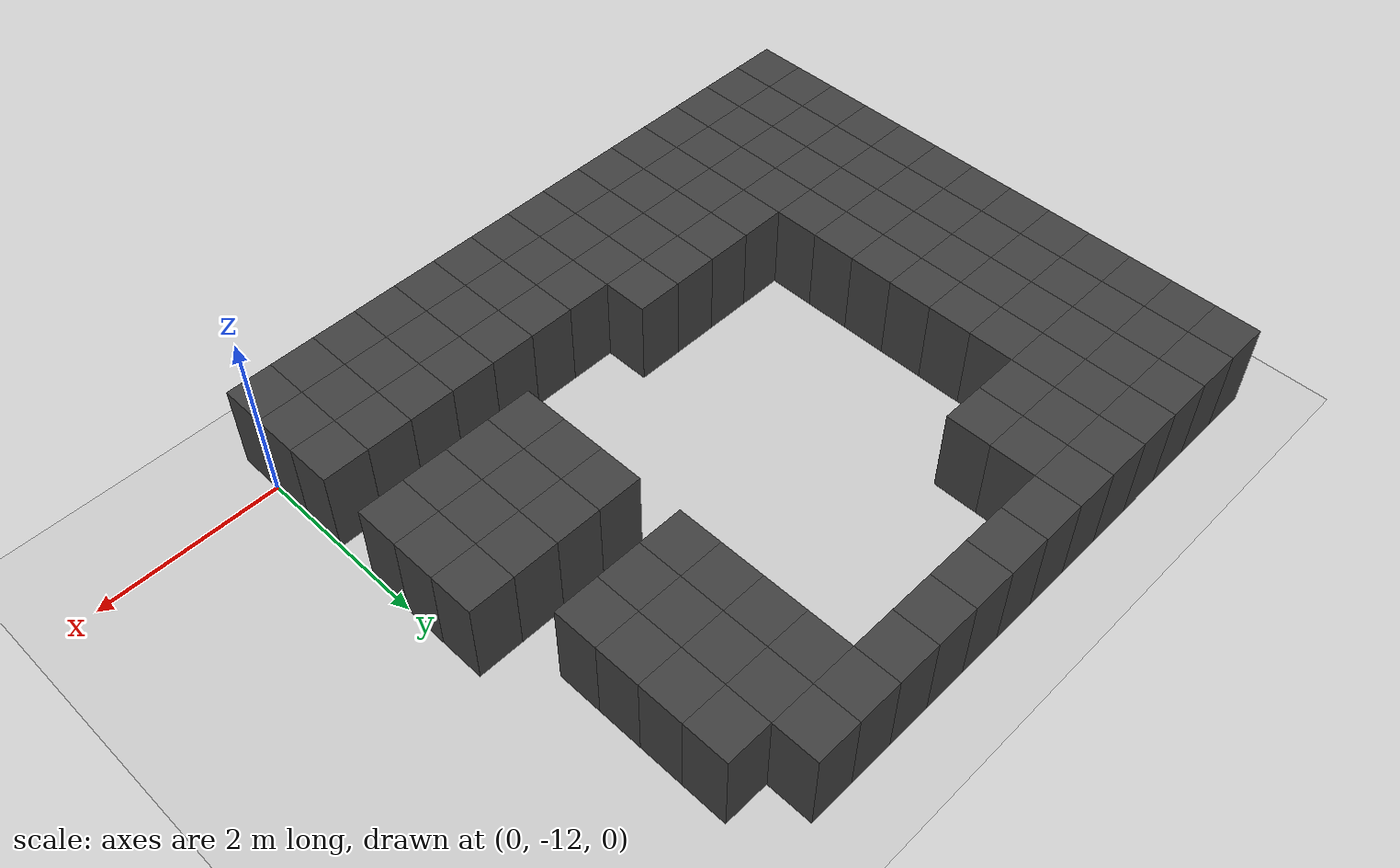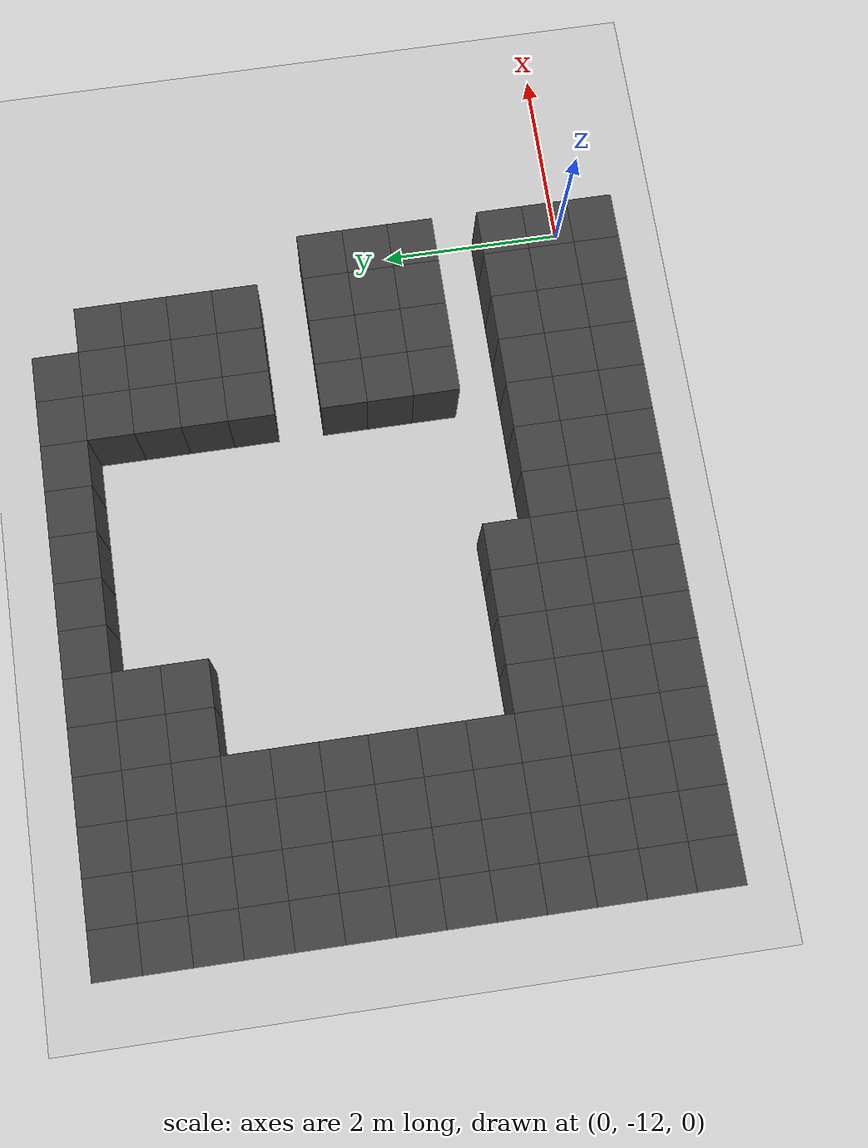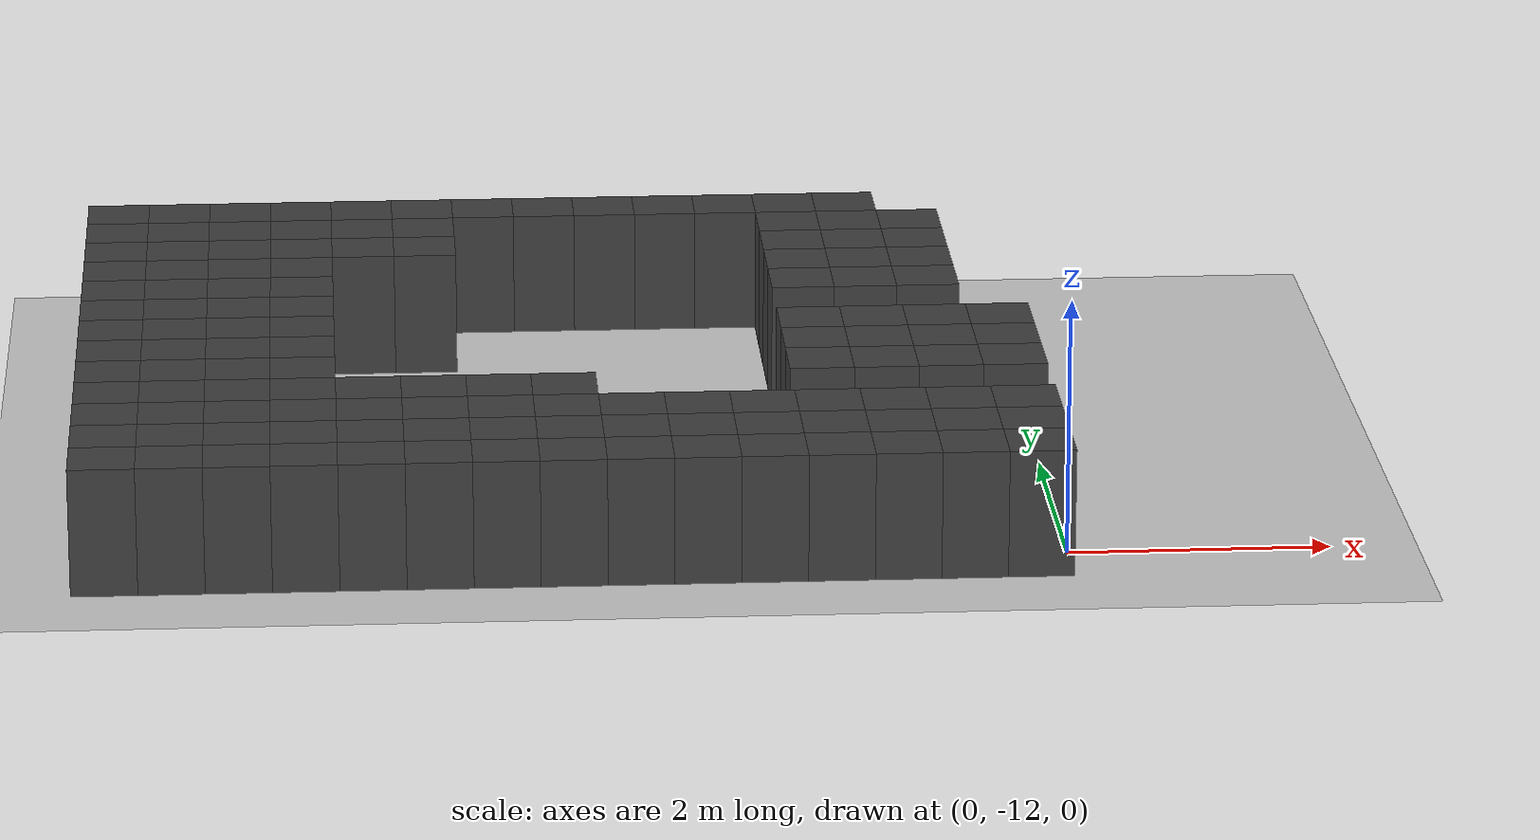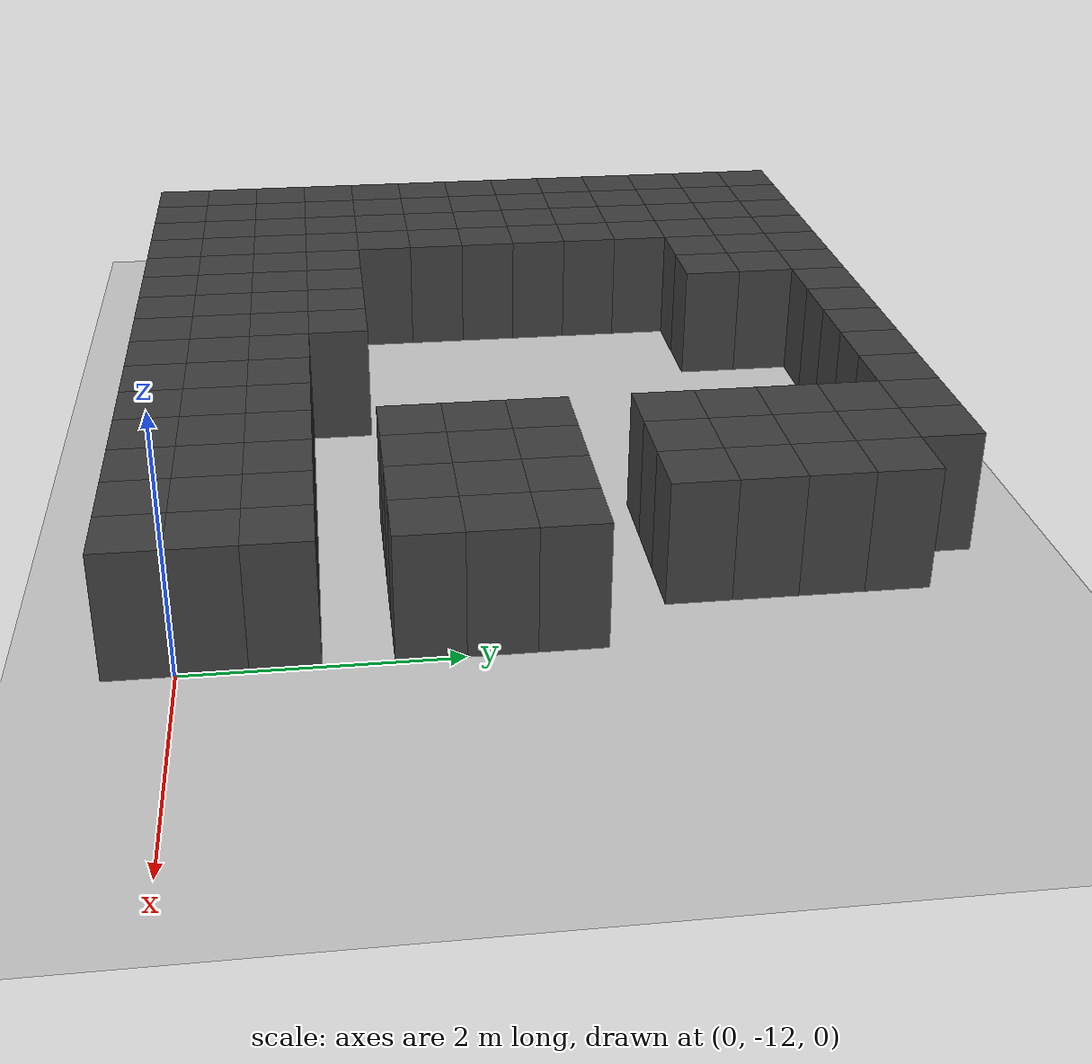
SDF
<sdf version="1.7">
 <world name="map_11779">
  <model name="ground_plane">
   <static>true</static>
   <link name="link">
    <collision name="collision">
     <geometry><plane><normal>0 0 1</normal><size>200 200</size></plane></geometry>
    </collision>
    <visual name="visual">
     <geometry><plane><normal>0 0 1</normal><size>200 200</size></plane></geometry>
     <material><ambient>0.8 0.8 0.8 1</ambient><diffuse>0.8 0.8 0.8 1</diffuse></material>
    </visual>
   </link>
  </model>
  <model name="maze_environment">
   <static>true</static>
   <link name="wall_1545">
    <pose>-7.250 -6.250 0.500 0 0 0</pose>
    <collision name="col"><geometry><box><size>0.5 0.5 1.0</size></box></geometry></collision>
    <visual name="vis">
     <geometry><box><size>0.5 0.5 1.0</size></box></geometry>
     <material><ambient>0.15 0.15 0.15 1</ambient><diffuse>0.25 0.25 0.25 1</diffuse></material>
    </visual>
   </link>
   <link name="wall_1546">
    <pose>-6.750 -6.250 0.500 0 0 0</pose>
    <collision name="col"><geometry><box><size>0.5 0.5 1.0</size></box></geometry></collision>
    <visual name="vis">
     <geometry><box><size>0.5 0.5 1.0</size></box></geometry>
     <material><ambient>0.15 0.15 0.15 1</ambient><diffuse>0.25 0.25 0.25 1</diffuse></material>
    </visual>
   </link>
   <link name="wall_1547">
    <pose>-6.250 -6.250 0.500 0 0 0</pose>
    <collision name="col"><geometry><box><size>0.5 0.5 1.0</size></box></geometry></collision>
    <visual name="vis">
     <geometry><box><size>0.5 0.5 1.0</size></box></geometry>
     <material><ambient>0.15 0.15 0.15 1</ambient><diffuse>0.25 0.25 0.25 1</diffuse></material>
    </visual>
   </link>
   <link name="wall_1548">
    <pose>-5.750 -6.250 0.500 0 0 0</pose>
    <collision name="col"><geometry><box><size>0.5 0.5 1.0</size></box></geometry></collision>
    <visual name="vis">
     <geometry><box><size>0.5 0.5 1.0</size></box></geometry>
     <material><ambient>0.15 0.15 0.15 1</ambient><diffuse>0.25 0.25 0.25 1</diffuse></material>
    </visual>
   </link>
   <link name="wall_1549">
    <pose>-5.250 -6.250 0.500 0 0 0</pose>
    <collision name="col"><geometry><box><size>0.5 0.5 1.0</size></box></geometry></collision>
    <visual name="vis">
     <geometry><box><size>0.5 0.5 1.0</size></box></geometry>
     <material><ambient>0.15 0.15 0.15 1</ambient><diffuse>0.25 0.25 0.25 1</diffuse></material>
    </visual>
   </link>
   <link name="wall_1550">
    <pose>-4.750 -6.250 0.500 0 0 0</pose>
    <collision name="col"><geometry><box><size>0.5 0.5 1.0</size></box></geometry></collision>
    <visual name="vis">
     <geometry><box><size>0.5 0.5 1.0</size></box></geometry>
     <material><ambient>0.15 0.15 0.15 1</ambient><diffuse>0.25 0.25 0.25 1</diffuse></material>
    </visual>
   </link>
   <link name="wall_1551">
    <pose>-4.250 -6.250 0.500 0 0 0</pose>
    <collision name="col"><geometry><box><size>0.5 0.5 1.0</size></box></geometry></collision>
    <visual name="vis">
     <geometry><box><size>0.5 0.5 1.0</size></box></geometry>
     <material><ambient>0.15 0.15 0.15 1</ambient><diffuse>0.25 0.25 0.25 1</diffuse></material>
    </visual>
   </link>
   <link name="wall_1552">
    <pose>-3.750 -6.250 0.500 0 0 0</pose>
    <collision name="col"><geometry><box><size>0.5 0.5 1.0</size></box></geometry></collision>
    <visual name="vis">
     <geometry><box><size>0.5 0.5 1.0</size></box></geometry>
     <material><ambient>0.15 0.15 0.15 1</ambient><diffuse>0.25 0.25 0.25 1</diffuse></material>
    </visual>
   </link>
   <link name="wall_1553">
    <pose>-3.250 -6.250 0.500 0 0 0</pose>
    <collision name="col"><geometry><box><size>0.5 0.5 1.0</size></box></geometry></collision>
    <visual name="vis">
     <geometry><box><size>0.5 0.5 1.0</size></box></geometry>
     <material><ambient>0.15 0.15 0.15 1</ambient><diffuse>0.25 0.25 0.25 1</diffuse></material>
    </visual>
   </link>
   <link name="wall_1554">
    <pose>-2.750 -6.250 0.500 0 0 0</pose>
    <collision name="col"><geometry><box><size>0.5 0.5 1.0</size></box></geometry></collision>
    <visual name="vis">
     <geometry><box><size>0.5 0.5 1.0</size></box></geometry>
     <material><ambient>0.15 0.15 0.15 1</ambient><diffuse>0.25 0.25 0.25 1</diffuse></material>
    </visual>
   </link>
   <link name="wall_1555">
    <pose>-2.250 -6.250 0.500 0 0 0</pose>
    <collision name="col"><geometry><box><size>0.5 0.5 1.0</size></box></geometry></collision>
    <visual name="vis">
     <geometry><box><size>0.5 0.5 1.0</size></box></geometry>
     <material><ambient>0.15 0.15 0.15 1</ambient><diffuse>0.25 0.25 0.25 1</diffuse></material>
    </visual>
   </link>
   <link name="wall_1556">
    <pose>-1.750 -6.250 0.500 0 0 0</pose>
    <collision name="col"><geometry><box><size>0.5 0.5 1.0</size></box></geometry></collision>
    <visual name="vis">
     <geometry><box><size>0.5 0.5 1.0</size></box></geometry>
     <material><ambient>0.15 0.15 0.15 1</ambient><diffuse>0.25 0.25 0.25 1</diffuse></material>
    </visual>
   </link>
   <link name="wall_1557">
    <pose>-1.250 -6.250 0.500 0 0 0</pose>
    <collision name="col"><geometry><box><size>0.5 0.5 1.0</size></box></geometry></collision>
    <visual name="vis">
     <geometry><box><size>0.5 0.5 1.0</size></box></geometry>
     <material><ambient>0.15 0.15 0.15 1</ambient><diffuse>0.25 0.25 0.25 1</diffuse></material>
    </visual>
   </link>
   <link name="wall_1594">
    <pose>-7.250 -6.750 0.500 0 0 0</pose>
    <collision name="col"><geometry><box><size>0.5 0.5 1.0</size></box></geometry></collision>
    <visual name="vis">
     <geometry><box><size>0.5 0.5 1.0</size></box></geometry>
     <material><ambient>0.15 0.15 0.15 1</ambient><diffuse>0.25 0.25 0.25 1</diffuse></material>
    </visual>
   </link>
   <link name="wall_1595">
    <pose>-6.750 -6.750 0.500 0 0 0</pose>
    <collision name="col"><geometry><box><size>0.5 0.5 1.0</size></box></geometry></collision>
    <visual name="vis">
     <geometry><box><size>0.5 0.5 1.0</size></box></geometry>
     <material><ambient>0.15 0.15 0.15 1</ambient><diffuse>0.25 0.25 0.25 1</diffuse></material>
    </visual>
   </link>
   <link name="wall_1596">
    <pose>-6.250 -6.750 0.500 0 0 0</pose>
    <collision name="col"><geometry><box><size>0.5 0.5 1.0</size></box></geometry></collision>
    <visual name="vis">
     <geometry><box><size>0.5 0.5 1.0</size></box></geometry>
     <material><ambient>0.15 0.15 0.15 1</ambient><diffuse>0.25 0.25 0.25 1</diffuse></material>
    </visual>
   </link>
   <link name="wall_1597">
    <pose>-5.750 -6.750 0.500 0 0 0</pose>
    <collision name="col"><geometry><box><size>0.5 0.5 1.0</size></box></geometry></collision>
    <visual name="vis">
     <geometry><box><size>0.5 0.5 1.0</size></box></geometry>
     <material><ambient>0.15 0.15 0.15 1</ambient><diffuse>0.25 0.25 0.25 1</diffuse></material>
    </visual>
   </link>
   <link name="wall_1598">
    <pose>-5.250 -6.750 0.500 0 0 0</pose>
    <collision name="col"><geometry><box><size>0.5 0.5 1.0</size></box></geometry></collision>
    <visual name="vis">
     <geometry><box><size>0.5 0.5 1.0</size></box></geometry>
     <material><ambient>0.15 0.15 0.15 1</ambient><diffuse>0.25 0.25 0.25 1</diffuse></material>
    </visual>
   </link>
   <link name="wall_1599">
    <pose>-4.750 -6.750 0.500 0 0 0</pose>
    <collision name="col"><geometry><box><size>0.5 0.5 1.0</size></box></geometry></collision>
    <visual name="vis">
     <geometry><box><size>0.5 0.5 1.0</size></box></geometry>
     <material><ambient>0.15 0.15 0.15 1</ambient><diffuse>0.25 0.25 0.25 1</diffuse></material>
    </visual>
   </link>
   <link name="wall_1600">
    <pose>-1.750 -6.750 0.500 0 0 0</pose>
    <collision name="col"><geometry><box><size>0.5 0.5 1.0</size></box></geometry></collision>
    <visual name="vis">
     <geometry><box><size>0.5 0.5 1.0</size></box></geometry>
     <material><ambient>0.15 0.15 0.15 1</ambient><diffuse>0.25 0.25 0.25 1</diffuse></material>
    </visual>
   </link>
   <link name="wall_1601">
    <pose>-1.250 -6.750 0.500 0 0 0</pose>
    <collision name="col"><geometry><box><size>0.5 0.5 1.0</size></box></geometry></collision>
    <visual name="vis">
     <geometry><box><size>0.5 0.5 1.0</size></box></geometry>
     <material><ambient>0.15 0.15 0.15 1</ambient><diffuse>0.25 0.25 0.25 1</diffuse></material>
    </visual>
   </link>
   <link name="wall_1602">
    <pose>-0.750 -6.750 0.500 0 0 0</pose>
    <collision name="col"><geometry><box><size>0.5 0.5 1.0</size></box></geometry></collision>
    <visual name="vis">
     <geometry><box><size>0.5 0.5 1.0</size></box></geometry>
     <material><ambient>0.15 0.15 0.15 1</ambient><diffuse>0.25 0.25 0.25 1</diffuse></material>
    </visual>
   </link>
   <link name="wall_1638">
    <pose>-7.250 -7.250 0.500 0 0 0</pose>
    <collision name="col"><geometry><box><size>0.5 0.5 1.0</size></box></geometry></collision>
    <visual name="vis">
     <geometry><box><size>0.5 0.5 1.0</size></box></geometry>
     <material><ambient>0.15 0.15 0.15 1</ambient><diffuse>0.25 0.25 0.25 1</diffuse></material>
    </visual>
   </link>
   <link name="wall_1639">
    <pose>-6.750 -7.250 0.500 0 0 0</pose>
    <collision name="col"><geometry><box><size>0.5 0.5 1.0</size></box></geometry></collision>
    <visual name="vis">
     <geometry><box><size>0.5 0.5 1.0</size></box></geometry>
     <material><ambient>0.15 0.15 0.15 1</ambient><diffuse>0.25 0.25 0.25 1</diffuse></material>
    </visual>
   </link>
   <link name="wall_1640">
    <pose>-6.250 -7.250 0.500 0 0 0</pose>
    <collision name="col"><geometry><box><size>0.5 0.5 1.0</size></box></geometry></collision>
    <visual name="vis">
     <geometry><box><size>0.5 0.5 1.0</size></box></geometry>
     <material><ambient>0.15 0.15 0.15 1</ambient><diffuse>0.25 0.25 0.25 1</diffuse></material>
    </visual>
   </link>
   <link name="wall_1641">
    <pose>-5.750 -7.250 0.500 0 0 0</pose>
    <collision name="col"><geometry><box><size>0.5 0.5 1.0</size></box></geometry></collision>
    <visual name="vis">
     <geometry><box><size>0.5 0.5 1.0</size></box></geometry>
     <material><ambient>0.15 0.15 0.15 1</ambient><diffuse>0.25 0.25 0.25 1</diffuse></material>
    </visual>
   </link>
   <link name="wall_1642">
    <pose>-5.250 -7.250 0.500 0 0 0</pose>
    <collision name="col"><geometry><box><size>0.5 0.5 1.0</size></box></geometry></collision>
    <visual name="vis">
     <geometry><box><size>0.5 0.5 1.0</size></box></geometry>
     <material><ambient>0.15 0.15 0.15 1</ambient><diffuse>0.25 0.25 0.25 1</diffuse></material>
    </visual>
   </link>
   <link name="wall_1643">
    <pose>-4.750 -7.250 0.500 0 0 0</pose>
    <collision name="col"><geometry><box><size>0.5 0.5 1.0</size></box></geometry></collision>
    <visual name="vis">
     <geometry><box><size>0.5 0.5 1.0</size></box></geometry>
     <material><ambient>0.15 0.15 0.15 1</ambient><diffuse>0.25 0.25 0.25 1</diffuse></material>
    </visual>
   </link>
   <link name="wall_1644">
    <pose>-1.750 -7.250 0.500 0 0 0</pose>
    <collision name="col"><geometry><box><size>0.5 0.5 1.0</size></box></geometry></collision>
    <visual name="vis">
     <geometry><box><size>0.5 0.5 1.0</size></box></geometry>
     <material><ambient>0.15 0.15 0.15 1</ambient><diffuse>0.25 0.25 0.25 1</diffuse></material>
    </visual>
   </link>
   <link name="wall_1645">
    <pose>-1.250 -7.250 0.500 0 0 0</pose>
    <collision name="col"><geometry><box><size>0.5 0.5 1.0</size></box></geometry></collision>
    <visual name="vis">
     <geometry><box><size>0.5 0.5 1.0</size></box></geometry>
     <material><ambient>0.15 0.15 0.15 1</ambient><diffuse>0.25 0.25 0.25 1</diffuse></material>
    </visual>
   </link>
   <link name="wall_1646">
    <pose>-0.750 -7.250 0.500 0 0 0</pose>
    <collision name="col"><geometry><box><size>0.5 0.5 1.0</size></box></geometry></collision>
    <visual name="vis">
     <geometry><box><size>0.5 0.5 1.0</size></box></geometry>
     <material><ambient>0.15 0.15 0.15 1</ambient><diffuse>0.25 0.25 0.25 1</diffuse></material>
    </visual>
   </link>
   <link name="wall_1682">
    <pose>-7.250 -7.750 0.500 0 0 0</pose>
    <collision name="col"><geometry><box><size>0.5 0.5 1.0</size></box></geometry></collision>
    <visual name="vis">
     <geometry><box><size>0.5 0.5 1.0</size></box></geometry>
     <material><ambient>0.15 0.15 0.15 1</ambient><diffuse>0.25 0.25 0.25 1</diffuse></material>
    </visual>
   </link>
   <link name="wall_1683">
    <pose>-6.750 -7.750 0.500 0 0 0</pose>
    <collision name="col"><geometry><box><size>0.5 0.5 1.0</size></box></geometry></collision>
    <visual name="vis">
     <geometry><box><size>0.5 0.5 1.0</size></box></geometry>
     <material><ambient>0.15 0.15 0.15 1</ambient><diffuse>0.25 0.25 0.25 1</diffuse></material>
    </visual>
   </link>
   <link name="wall_1684">
    <pose>-6.250 -7.750 0.500 0 0 0</pose>
    <collision name="col"><geometry><box><size>0.5 0.5 1.0</size></box></geometry></collision>
    <visual name="vis">
     <geometry><box><size>0.5 0.5 1.0</size></box></geometry>
     <material><ambient>0.15 0.15 0.15 1</ambient><diffuse>0.25 0.25 0.25 1</diffuse></material>
    </visual>
   </link>
   <link name="wall_1685">
    <pose>-5.750 -7.750 0.500 0 0 0</pose>
    <collision name="col"><geometry><box><size>0.5 0.5 1.0</size></box></geometry></collision>
    <visual name="vis">
     <geometry><box><size>0.5 0.5 1.0</size></box></geometry>
     <material><ambient>0.15 0.15 0.15 1</ambient><diffuse>0.25 0.25 0.25 1</diffuse></material>
    </visual>
   </link>
   <link name="wall_1686">
    <pose>-1.750 -7.750 0.500 0 0 0</pose>
    <collision name="col"><geometry><box><size>0.5 0.5 1.0</size></box></geometry></collision>
    <visual name="vis">
     <geometry><box><size>0.5 0.5 1.0</size></box></geometry>
     <material><ambient>0.15 0.15 0.15 1</ambient><diffuse>0.25 0.25 0.25 1</diffuse></material>
    </visual>
   </link>
   <link name="wall_1687">
    <pose>-1.250 -7.750 0.500 0 0 0</pose>
    <collision name="col"><geometry><box><size>0.5 0.5 1.0</size></box></geometry></collision>
    <visual name="vis">
     <geometry><box><size>0.5 0.5 1.0</size></box></geometry>
     <material><ambient>0.15 0.15 0.15 1</ambient><diffuse>0.25 0.25 0.25 1</diffuse></material>
    </visual>
   </link>
   <link name="wall_1688">
    <pose>-0.750 -7.750 0.500 0 0 0</pose>
    <collision name="col"><geometry><box><size>0.5 0.5 1.0</size></box></geometry></collision>
    <visual name="vis">
     <geometry><box><size>0.5 0.5 1.0</size></box></geometry>
     <material><ambient>0.15 0.15 0.15 1</ambient><diffuse>0.25 0.25 0.25 1</diffuse></material>
    </visual>
   </link>
   <link name="wall_1724">
    <pose>-7.250 -8.250 0.500 0 0 0</pose>
    <collision name="col"><geometry><box><size>0.5 0.5 1.0</size></box></geometry></collision>
    <visual name="vis">
     <geometry><box><size>0.5 0.5 1.0</size></box></geometry>
     <material><ambient>0.15 0.15 0.15 1</ambient><diffuse>0.25 0.25 0.25 1</diffuse></material>
    </visual>
   </link>
   <link name="wall_1725">
    <pose>-6.750 -8.250 0.500 0 0 0</pose>
    <collision name="col"><geometry><box><size>0.5 0.5 1.0</size></box></geometry></collision>
    <visual name="vis">
     <geometry><box><size>0.5 0.5 1.0</size></box></geometry>
     <material><ambient>0.15 0.15 0.15 1</ambient><diffuse>0.25 0.25 0.25 1</diffuse></material>
    </visual>
   </link>
   <link name="wall_1726">
    <pose>-6.250 -8.250 0.500 0 0 0</pose>
    <collision name="col"><geometry><box><size>0.5 0.5 1.0</size></box></geometry></collision>
    <visual name="vis">
     <geometry><box><size>0.5 0.5 1.0</size></box></geometry>
     <material><ambient>0.15 0.15 0.15 1</ambient><diffuse>0.25 0.25 0.25 1</diffuse></material>
    </visual>
   </link>
   <link name="wall_1727">
    <pose>-5.750 -8.250 0.500 0 0 0</pose>
    <collision name="col"><geometry><box><size>0.5 0.5 1.0</size></box></geometry></collision>
    <visual name="vis">
     <geometry><box><size>0.5 0.5 1.0</size></box></geometry>
     <material><ambient>0.15 0.15 0.15 1</ambient><diffuse>0.25 0.25 0.25 1</diffuse></material>
    </visual>
   </link>
   <link name="wall_1728">
    <pose>-1.750 -8.250 0.500 0 0 0</pose>
    <collision name="col"><geometry><box><size>0.5 0.5 1.0</size></box></geometry></collision>
    <visual name="vis">
     <geometry><box><size>0.5 0.5 1.0</size></box></geometry>
     <material><ambient>0.15 0.15 0.15 1</ambient><diffuse>0.25 0.25 0.25 1</diffuse></material>
    </visual>
   </link>
   <link name="wall_1729">
    <pose>-1.250 -8.250 0.500 0 0 0</pose>
    <collision name="col"><geometry><box><size>0.5 0.5 1.0</size></box></geometry></collision>
    <visual name="vis">
     <geometry><box><size>0.5 0.5 1.0</size></box></geometry>
     <material><ambient>0.15 0.15 0.15 1</ambient><diffuse>0.25 0.25 0.25 1</diffuse></material>
    </visual>
   </link>
   <link name="wall_1730">
    <pose>-0.750 -8.250 0.500 0 0 0</pose>
    <collision name="col"><geometry><box><size>0.5 0.5 1.0</size></box></geometry></collision>
    <visual name="vis">
     <geometry><box><size>0.5 0.5 1.0</size></box></geometry>
     <material><ambient>0.15 0.15 0.15 1</ambient><diffuse>0.25 0.25 0.25 1</diffuse></material>
    </visual>
   </link>
   <link name="wall_1762">
    <pose>-7.250 -8.750 0.500 0 0 0</pose>
    <collision name="col"><geometry><box><size>0.5 0.5 1.0</size></box></geometry></collision>
    <visual name="vis">
     <geometry><box><size>0.5 0.5 1.0</size></box></geometry>
     <material><ambient>0.15 0.15 0.15 1</ambient><diffuse>0.25 0.25 0.25 1</diffuse></material>
    </visual>
   </link>
   <link name="wall_1763">
    <pose>-6.750 -8.750 0.500 0 0 0</pose>
    <collision name="col"><geometry><box><size>0.5 0.5 1.0</size></box></geometry></collision>
    <visual name="vis">
     <geometry><box><size>0.5 0.5 1.0</size></box></geometry>
     <material><ambient>0.15 0.15 0.15 1</ambient><diffuse>0.25 0.25 0.25 1</diffuse></material>
    </visual>
   </link>
   <link name="wall_1764">
    <pose>-6.250 -8.750 0.500 0 0 0</pose>
    <collision name="col"><geometry><box><size>0.5 0.5 1.0</size></box></geometry></collision>
    <visual name="vis">
     <geometry><box><size>0.5 0.5 1.0</size></box></geometry>
     <material><ambient>0.15 0.15 0.15 1</ambient><diffuse>0.25 0.25 0.25 1</diffuse></material>
    </visual>
   </link>
   <link name="wall_1765">
    <pose>-5.750 -8.750 0.500 0 0 0</pose>
    <collision name="col"><geometry><box><size>0.5 0.5 1.0</size></box></geometry></collision>
    <visual name="vis">
     <geometry><box><size>0.5 0.5 1.0</size></box></geometry>
     <material><ambient>0.15 0.15 0.15 1</ambient><diffuse>0.25 0.25 0.25 1</diffuse></material>
    </visual>
   </link>
   <link name="wall_1797">
    <pose>-7.250 -9.250 0.500 0 0 0</pose>
    <collision name="col"><geometry><box><size>0.5 0.5 1.0</size></box></geometry></collision>
    <visual name="vis">
     <geometry><box><size>0.5 0.5 1.0</size></box></geometry>
     <material><ambient>0.15 0.15 0.15 1</ambient><diffuse>0.25 0.25 0.25 1</diffuse></material>
    </visual>
   </link>
   <link name="wall_1798">
    <pose>-6.750 -9.250 0.500 0 0 0</pose>
    <collision name="col"><geometry><box><size>0.5 0.5 1.0</size></box></geometry></collision>
    <visual name="vis">
     <geometry><box><size>0.5 0.5 1.0</size></box></geometry>
     <material><ambient>0.15 0.15 0.15 1</ambient><diffuse>0.25 0.25 0.25 1</diffuse></material>
    </visual>
   </link>
   <link name="wall_1799">
    <pose>-6.250 -9.250 0.500 0 0 0</pose>
    <collision name="col"><geometry><box><size>0.5 0.5 1.0</size></box></geometry></collision>
    <visual name="vis">
     <geometry><box><size>0.5 0.5 1.0</size></box></geometry>
     <material><ambient>0.15 0.15 0.15 1</ambient><diffuse>0.25 0.25 0.25 1</diffuse></material>
    </visual>
   </link>
   <link name="wall_1800">
    <pose>-5.750 -9.250 0.500 0 0 0</pose>
    <collision name="col"><geometry><box><size>0.5 0.5 1.0</size></box></geometry></collision>
    <visual name="vis">
     <geometry><box><size>0.5 0.5 1.0</size></box></geometry>
     <material><ambient>0.15 0.15 0.15 1</ambient><diffuse>0.25 0.25 0.25 1</diffuse></material>
    </visual>
   </link>
   <link name="wall_1801">
    <pose>-1.750 -9.250 0.500 0 0 0</pose>
    <collision name="col"><geometry><box><size>0.5 0.5 1.0</size></box></geometry></collision>
    <visual name="vis">
     <geometry><box><size>0.5 0.5 1.0</size></box></geometry>
     <material><ambient>0.15 0.15 0.15 1</ambient><diffuse>0.25 0.25 0.25 1</diffuse></material>
    </visual>
   </link>
   <link name="wall_1802">
    <pose>-1.250 -9.250 0.500 0 0 0</pose>
    <collision name="col"><geometry><box><size>0.5 0.5 1.0</size></box></geometry></collision>
    <visual name="vis">
     <geometry><box><size>0.5 0.5 1.0</size></box></geometry>
     <material><ambient>0.15 0.15 0.15 1</ambient><diffuse>0.25 0.25 0.25 1</diffuse></material>
    </visual>
   </link>
   <link name="wall_1803">
    <pose>-0.750 -9.250 0.500 0 0 0</pose>
    <collision name="col"><geometry><box><size>0.5 0.5 1.0</size></box></geometry></collision>
    <visual name="vis">
     <geometry><box><size>0.5 0.5 1.0</size></box></geometry>
     <material><ambient>0.15 0.15 0.15 1</ambient><diffuse>0.25 0.25 0.25 1</diffuse></material>
    </visual>
   </link>
   <link name="wall_1804">
    <pose>-0.250 -9.250 0.500 0 0 0</pose>
    <collision name="col"><geometry><box><size>0.5 0.5 1.0</size></box></geometry></collision>
    <visual name="vis">
     <geometry><box><size>0.5 0.5 1.0</size></box></geometry>
     <material><ambient>0.15 0.15 0.15 1</ambient><diffuse>0.25 0.25 0.25 1</diffuse></material>
    </visual>
   </link>
   <link name="wall_1828">
    <pose>-7.250 -9.750 0.500 0 0 0</pose>
    <collision name="col"><geometry><box><size>0.5 0.5 1.0</size></box></geometry></collision>
    <visual name="vis">
     <geometry><box><size>0.5 0.5 1.0</size></box></geometry>
     <material><ambient>0.15 0.15 0.15 1</ambient><diffuse>0.25 0.25 0.25 1</diffuse></material>
    </visual>
   </link>
   <link name="wall_1829">
    <pose>-6.750 -9.750 0.500 0 0 0</pose>
    <collision name="col"><geometry><box><size>0.5 0.5 1.0</size></box></geometry></collision>
    <visual name="vis">
     <geometry><box><size>0.5 0.5 1.0</size></box></geometry>
     <material><ambient>0.15 0.15 0.15 1</ambient><diffuse>0.25 0.25 0.25 1</diffuse></material>
    </visual>
   </link>
   <link name="wall_1830">
    <pose>-6.250 -9.750 0.500 0 0 0</pose>
    <collision name="col"><geometry><box><size>0.5 0.5 1.0</size></box></geometry></collision>
    <visual name="vis">
     <geometry><box><size>0.5 0.5 1.0</size></box></geometry>
     <material><ambient>0.15 0.15 0.15 1</ambient><diffuse>0.25 0.25 0.25 1</diffuse></material>
    </visual>
   </link>
   <link name="wall_1831">
    <pose>-5.750 -9.750 0.500 0 0 0</pose>
    <collision name="col"><geometry><box><size>0.5 0.5 1.0</size></box></geometry></collision>
    <visual name="vis">
     <geometry><box><size>0.5 0.5 1.0</size></box></geometry>
     <material><ambient>0.15 0.15 0.15 1</ambient><diffuse>0.25 0.25 0.25 1</diffuse></material>
    </visual>
   </link>
   <link name="wall_1832">
    <pose>-1.750 -9.750 0.500 0 0 0</pose>
    <collision name="col"><geometry><box><size>0.5 0.5 1.0</size></box></geometry></collision>
    <visual name="vis">
     <geometry><box><size>0.5 0.5 1.0</size></box></geometry>
     <material><ambient>0.15 0.15 0.15 1</ambient><diffuse>0.25 0.25 0.25 1</diffuse></material>
    </visual>
   </link>
   <link name="wall_1833">
    <pose>-1.250 -9.750 0.500 0 0 0</pose>
    <collision name="col"><geometry><box><size>0.5 0.5 1.0</size></box></geometry></collision>
    <visual name="vis">
     <geometry><box><size>0.5 0.5 1.0</size></box></geometry>
     <material><ambient>0.15 0.15 0.15 1</ambient><diffuse>0.25 0.25 0.25 1</diffuse></material>
    </visual>
   </link>
   <link name="wall_1834">
    <pose>-0.750 -9.750 0.500 0 0 0</pose>
    <collision name="col"><geometry><box><size>0.5 0.5 1.0</size></box></geometry></collision>
    <visual name="vis">
     <geometry><box><size>0.5 0.5 1.0</size></box></geometry>
     <material><ambient>0.15 0.15 0.15 1</ambient><diffuse>0.25 0.25 0.25 1</diffuse></material>
    </visual>
   </link>
   <link name="wall_1835">
    <pose>-0.250 -9.750 0.500 0 0 0</pose>
    <collision name="col"><geometry><box><size>0.5 0.5 1.0</size></box></geometry></collision>
    <visual name="vis">
     <geometry><box><size>0.5 0.5 1.0</size></box></geometry>
     <material><ambient>0.15 0.15 0.15 1</ambient><diffuse>0.25 0.25 0.25 1</diffuse></material>
    </visual>
   </link>
   <link name="wall_1859">
    <pose>-7.250 -10.250 0.500 0 0 0</pose>
    <collision name="col"><geometry><box><size>0.5 0.5 1.0</size></box></geometry></collision>
    <visual name="vis">
     <geometry><box><size>0.5 0.5 1.0</size></box></geometry>
     <material><ambient>0.15 0.15 0.15 1</ambient><diffuse>0.25 0.25 0.25 1</diffuse></material>
    </visual>
   </link>
   <link name="wall_1860">
    <pose>-6.750 -10.250 0.500 0 0 0</pose>
    <collision name="col"><geometry><box><size>0.5 0.5 1.0</size></box></geometry></collision>
    <visual name="vis">
     <geometry><box><size>0.5 0.5 1.0</size></box></geometry>
     <material><ambient>0.15 0.15 0.15 1</ambient><diffuse>0.25 0.25 0.25 1</diffuse></material>
    </visual>
   </link>
   <link name="wall_1861">
    <pose>-6.250 -10.250 0.500 0 0 0</pose>
    <collision name="col"><geometry><box><size>0.5 0.5 1.0</size></box></geometry></collision>
    <visual name="vis">
     <geometry><box><size>0.5 0.5 1.0</size></box></geometry>
     <material><ambient>0.15 0.15 0.15 1</ambient><diffuse>0.25 0.25 0.25 1</diffuse></material>
    </visual>
   </link>
   <link name="wall_1862">
    <pose>-5.750 -10.250 0.500 0 0 0</pose>
    <collision name="col"><geometry><box><size>0.5 0.5 1.0</size></box></geometry></collision>
    <visual name="vis">
     <geometry><box><size>0.5 0.5 1.0</size></box></geometry>
     <material><ambient>0.15 0.15 0.15 1</ambient><diffuse>0.25 0.25 0.25 1</diffuse></material>
    </visual>
   </link>
   <link name="wall_1863">
    <pose>-1.750 -10.250 0.500 0 0 0</pose>
    <collision name="col"><geometry><box><size>0.5 0.5 1.0</size></box></geometry></collision>
    <visual name="vis">
     <geometry><box><size>0.5 0.5 1.0</size></box></geometry>
     <material><ambient>0.15 0.15 0.15 1</ambient><diffuse>0.25 0.25 0.25 1</diffuse></material>
    </visual>
   </link>
   <link name="wall_1864">
    <pose>-1.250 -10.250 0.500 0 0 0</pose>
    <collision name="col"><geometry><box><size>0.5 0.5 1.0</size></box></geometry></collision>
    <visual name="vis">
     <geometry><box><size>0.5 0.5 1.0</size></box></geometry>
     <material><ambient>0.15 0.15 0.15 1</ambient><diffuse>0.25 0.25 0.25 1</diffuse></material>
    </visual>
   </link>
   <link name="wall_1865">
    <pose>-0.750 -10.250 0.500 0 0 0</pose>
    <collision name="col"><geometry><box><size>0.5 0.5 1.0</size></box></geometry></collision>
    <visual name="vis">
     <geometry><box><size>0.5 0.5 1.0</size></box></geometry>
     <material><ambient>0.15 0.15 0.15 1</ambient><diffuse>0.25 0.25 0.25 1</diffuse></material>
    </visual>
   </link>
   <link name="wall_1866">
    <pose>-0.250 -10.250 0.500 0 0 0</pose>
    <collision name="col"><geometry><box><size>0.5 0.5 1.0</size></box></geometry></collision>
    <visual name="vis">
     <geometry><box><size>0.5 0.5 1.0</size></box></geometry>
     <material><ambient>0.15 0.15 0.15 1</ambient><diffuse>0.25 0.25 0.25 1</diffuse></material>
    </visual>
   </link>
   <link name="wall_1883">
    <pose>-7.250 -10.750 0.500 0 0 0</pose>
    <collision name="col"><geometry><box><size>0.5 0.5 1.0</size></box></geometry></collision>
    <visual name="vis">
     <geometry><box><size>0.5 0.5 1.0</size></box></geometry>
     <material><ambient>0.15 0.15 0.15 1</ambient><diffuse>0.25 0.25 0.25 1</diffuse></material>
    </visual>
   </link>
   <link name="wall_1884">
    <pose>-6.750 -10.750 0.500 0 0 0</pose>
    <collision name="col"><geometry><box><size>0.5 0.5 1.0</size></box></geometry></collision>
    <visual name="vis">
     <geometry><box><size>0.5 0.5 1.0</size></box></geometry>
     <material><ambient>0.15 0.15 0.15 1</ambient><diffuse>0.25 0.25 0.25 1</diffuse></material>
    </visual>
   </link>
   <link name="wall_1885">
    <pose>-6.250 -10.750 0.500 0 0 0</pose>
    <collision name="col"><geometry><box><size>0.5 0.5 1.0</size></box></geometry></collision>
    <visual name="vis">
     <geometry><box><size>0.5 0.5 1.0</size></box></geometry>
     <material><ambient>0.15 0.15 0.15 1</ambient><diffuse>0.25 0.25 0.25 1</diffuse></material>
    </visual>
   </link>
   <link name="wall_1886">
    <pose>-5.750 -10.750 0.500 0 0 0</pose>
    <collision name="col"><geometry><box><size>0.5 0.5 1.0</size></box></geometry></collision>
    <visual name="vis">
     <geometry><box><size>0.5 0.5 1.0</size></box></geometry>
     <material><ambient>0.15 0.15 0.15 1</ambient><diffuse>0.25 0.25 0.25 1</diffuse></material>
    </visual>
   </link>
   <link name="wall_1887">
    <pose>-5.250 -10.750 0.500 0 0 0</pose>
    <collision name="col"><geometry><box><size>0.5 0.5 1.0</size></box></geometry></collision>
    <visual name="vis">
     <geometry><box><size>0.5 0.5 1.0</size></box></geometry>
     <material><ambient>0.15 0.15 0.15 1</ambient><diffuse>0.25 0.25 0.25 1</diffuse></material>
    </visual>
   </link>
   <link name="wall_1888">
    <pose>-4.750 -10.750 0.500 0 0 0</pose>
    <collision name="col"><geometry><box><size>0.5 0.5 1.0</size></box></geometry></collision>
    <visual name="vis">
     <geometry><box><size>0.5 0.5 1.0</size></box></geometry>
     <material><ambient>0.15 0.15 0.15 1</ambient><diffuse>0.25 0.25 0.25 1</diffuse></material>
    </visual>
   </link>
   <link name="wall_1889">
    <pose>-4.250 -10.750 0.500 0 0 0</pose>
    <collision name="col"><geometry><box><size>0.5 0.5 1.0</size></box></geometry></collision>
    <visual name="vis">
     <geometry><box><size>0.5 0.5 1.0</size></box></geometry>
     <material><ambient>0.15 0.15 0.15 1</ambient><diffuse>0.25 0.25 0.25 1</diffuse></material>
    </visual>
   </link>
   <link name="wall_1890">
    <pose>-3.750 -10.750 0.500 0 0 0</pose>
    <collision name="col"><geometry><box><size>0.5 0.5 1.0</size></box></geometry></collision>
    <visual name="vis">
     <geometry><box><size>0.5 0.5 1.0</size></box></geometry>
     <material><ambient>0.15 0.15 0.15 1</ambient><diffuse>0.25 0.25 0.25 1</diffuse></material>
    </visual>
   </link>
   <link name="wall_1909">
    <pose>-7.250 -11.250 0.500 0 0 0</pose>
    <collision name="col"><geometry><box><size>0.5 0.5 1.0</size></box></geometry></collision>
    <visual name="vis">
     <geometry><box><size>0.5 0.5 1.0</size></box></geometry>
     <material><ambient>0.15 0.15 0.15 1</ambient><diffuse>0.25 0.25 0.25 1</diffuse></material>
    </visual>
   </link>
   <link name="wall_1910">
    <pose>-6.750 -11.250 0.500 0 0 0</pose>
    <collision name="col"><geometry><box><size>0.5 0.5 1.0</size></box></geometry></collision>
    <visual name="vis">
     <geometry><box><size>0.5 0.5 1.0</size></box></geometry>
     <material><ambient>0.15 0.15 0.15 1</ambient><diffuse>0.25 0.25 0.25 1</diffuse></material>
    </visual>
   </link>
   <link name="wall_1911">
    <pose>-6.250 -11.250 0.500 0 0 0</pose>
    <collision name="col"><geometry><box><size>0.5 0.5 1.0</size></box></geometry></collision>
    <visual name="vis">
     <geometry><box><size>0.5 0.5 1.0</size></box></geometry>
     <material><ambient>0.15 0.15 0.15 1</ambient><diffuse>0.25 0.25 0.25 1</diffuse></material>
    </visual>
   </link>
   <link name="wall_1912">
    <pose>-5.750 -11.250 0.500 0 0 0</pose>
    <collision name="col"><geometry><box><size>0.5 0.5 1.0</size></box></geometry></collision>
    <visual name="vis">
     <geometry><box><size>0.5 0.5 1.0</size></box></geometry>
     <material><ambient>0.15 0.15 0.15 1</ambient><diffuse>0.25 0.25 0.25 1</diffuse></material>
    </visual>
   </link>
   <link name="wall_1913">
    <pose>-5.250 -11.250 0.500 0 0 0</pose>
    <collision name="col"><geometry><box><size>0.5 0.5 1.0</size></box></geometry></collision>
    <visual name="vis">
     <geometry><box><size>0.5 0.5 1.0</size></box></geometry>
     <material><ambient>0.15 0.15 0.15 1</ambient><diffuse>0.25 0.25 0.25 1</diffuse></material>
    </visual>
   </link>
   <link name="wall_1914">
    <pose>-4.750 -11.250 0.500 0 0 0</pose>
    <collision name="col"><geometry><box><size>0.5 0.5 1.0</size></box></geometry></collision>
    <visual name="vis">
     <geometry><box><size>0.5 0.5 1.0</size></box></geometry>
     <material><ambient>0.15 0.15 0.15 1</ambient><diffuse>0.25 0.25 0.25 1</diffuse></material>
    </visual>
   </link>
   <link name="wall_1915">
    <pose>-4.250 -11.250 0.500 0 0 0</pose>
    <collision name="col"><geometry><box><size>0.5 0.5 1.0</size></box></geometry></collision>
    <visual name="vis">
     <geometry><box><size>0.5 0.5 1.0</size></box></geometry>
     <material><ambient>0.15 0.15 0.15 1</ambient><diffuse>0.25 0.25 0.25 1</diffuse></material>
    </visual>
   </link>
   <link name="wall_1916">
    <pose>-3.750 -11.250 0.500 0 0 0</pose>
    <collision name="col"><geometry><box><size>0.5 0.5 1.0</size></box></geometry></collision>
    <visual name="vis">
     <geometry><box><size>0.5 0.5 1.0</size></box></geometry>
     <material><ambient>0.15 0.15 0.15 1</ambient><diffuse>0.25 0.25 0.25 1</diffuse></material>
    </visual>
   </link>
   <link name="wall_1917">
    <pose>-3.250 -11.250 0.500 0 0 0</pose>
    <collision name="col"><geometry><box><size>0.5 0.5 1.0</size></box></geometry></collision>
    <visual name="vis">
     <geometry><box><size>0.5 0.5 1.0</size></box></geometry>
     <material><ambient>0.15 0.15 0.15 1</ambient><diffuse>0.25 0.25 0.25 1</diffuse></material>
    </visual>
   </link>
   <link name="wall_1918">
    <pose>-2.750 -11.250 0.500 0 0 0</pose>
    <collision name="col"><geometry><box><size>0.5 0.5 1.0</size></box></geometry></collision>
    <visual name="vis">
     <geometry><box><size>0.5 0.5 1.0</size></box></geometry>
     <material><ambient>0.15 0.15 0.15 1</ambient><diffuse>0.25 0.25 0.25 1</diffuse></material>
    </visual>
   </link>
   <link name="wall_1919">
    <pose>-2.250 -11.250 0.500 0 0 0</pose>
    <collision name="col"><geometry><box><size>0.5 0.5 1.0</size></box></geometry></collision>
    <visual name="vis">
     <geometry><box><size>0.5 0.5 1.0</size></box></geometry>
     <material><ambient>0.15 0.15 0.15 1</ambient><diffuse>0.25 0.25 0.25 1</diffuse></material>
    </visual>
   </link>
   <link name="wall_1920">
    <pose>-1.750 -11.250 0.500 0 0 0</pose>
    <collision name="col"><geometry><box><size>0.5 0.5 1.0</size></box></geometry></collision>
    <visual name="vis">
     <geometry><box><size>0.5 0.5 1.0</size></box></geometry>
     <material><ambient>0.15 0.15 0.15 1</ambient><diffuse>0.25 0.25 0.25 1</diffuse></material>
    </visual>
   </link>
   <link name="wall_1921">
    <pose>-1.250 -11.250 0.500 0 0 0</pose>
    <collision name="col"><geometry><box><size>0.5 0.5 1.0</size></box></geometry></collision>
    <visual name="vis">
     <geometry><box><size>0.5 0.5 1.0</size></box></geometry>
     <material><ambient>0.15 0.15 0.15 1</ambient><diffuse>0.25 0.25 0.25 1</diffuse></material>
    </visual>
   </link>
   <link name="wall_1922">
    <pose>-0.750 -11.250 0.500 0 0 0</pose>
    <collision name="col"><geometry><box><size>0.5 0.5 1.0</size></box></geometry></collision>
    <visual name="vis">
     <geometry><box><size>0.5 0.5 1.0</size></box></geometry>
     <material><ambient>0.15 0.15 0.15 1</ambient><diffuse>0.25 0.25 0.25 1</diffuse></material>
    </visual>
   </link>
   <link name="wall_1923">
    <pose>-0.250 -11.250 0.500 0 0 0</pose>
    <collision name="col"><geometry><box><size>0.5 0.5 1.0</size></box></geometry></collision>
    <visual name="vis">
     <geometry><box><size>0.5 0.5 1.0</size></box></geometry>
     <material><ambient>0.15 0.15 0.15 1</ambient><diffuse>0.25 0.25 0.25 1</diffuse></material>
    </visual>
   </link>
   <link name="wall_1945">
    <pose>-7.250 -11.750 0.500 0 0 0</pose>
    <collision name="col"><geometry><box><size>0.5 0.5 1.0</size></box></geometry></collision>
    <visual name="vis">
     <geometry><box><size>0.5 0.5 1.0</size></box></geometry>
     <material><ambient>0.15 0.15 0.15 1</ambient><diffuse>0.25 0.25 0.25 1</diffuse></material>
    </visual>
   </link>
   <link name="wall_1946">
    <pose>-6.750 -11.750 0.500 0 0 0</pose>
    <collision name="col"><geometry><box><size>0.5 0.5 1.0</size></box></geometry></collision>
    <visual name="vis">
     <geometry><box><size>0.5 0.5 1.0</size></box></geometry>
     <material><ambient>0.15 0.15 0.15 1</ambient><diffuse>0.25 0.25 0.25 1</diffuse></material>
    </visual>
   </link>
   <link name="wall_1947">
    <pose>-6.250 -11.750 0.500 0 0 0</pose>
    <collision name="col"><geometry><box><size>0.5 0.5 1.0</size></box></geometry></collision>
    <visual name="vis">
     <geometry><box><size>0.5 0.5 1.0</size></box></geometry>
     <material><ambient>0.15 0.15 0.15 1</ambient><diffuse>0.25 0.25 0.25 1</diffuse></material>
    </visual>
   </link>
   <link name="wall_1948">
    <pose>-5.750 -11.750 0.500 0 0 0</pose>
    <collision name="col"><geometry><box><size>0.5 0.5 1.0</size></box></geometry></collision>
    <visual name="vis">
     <geometry><box><size>0.5 0.5 1.0</size></box></geometry>
     <material><ambient>0.15 0.15 0.15 1</ambient><diffuse>0.25 0.25 0.25 1</diffuse></material>
    </visual>
   </link>
   <link name="wall_1949">
    <pose>-5.250 -11.750 0.500 0 0 0</pose>
    <collision name="col"><geometry><box><size>0.5 0.5 1.0</size></box></geometry></collision>
    <visual name="vis">
     <geometry><box><size>0.5 0.5 1.0</size></box></geometry>
     <material><ambient>0.15 0.15 0.15 1</ambient><diffuse>0.25 0.25 0.25 1</diffuse></material>
    </visual>
   </link>
   <link name="wall_1950">
    <pose>-4.750 -11.750 0.500 0 0 0</pose>
    <collision name="col"><geometry><box><size>0.5 0.5 1.0</size></box></geometry></collision>
    <visual name="vis">
     <geometry><box><size>0.5 0.5 1.0</size></box></geometry>
     <material><ambient>0.15 0.15 0.15 1</ambient><diffuse>0.25 0.25 0.25 1</diffuse></material>
    </visual>
   </link>
   <link name="wall_1951">
    <pose>-4.250 -11.750 0.500 0 0 0</pose>
    <collision name="col"><geometry><box><size>0.5 0.5 1.0</size></box></geometry></collision>
    <visual name="vis">
     <geometry><box><size>0.5 0.5 1.0</size></box></geometry>
     <material><ambient>0.15 0.15 0.15 1</ambient><diffuse>0.25 0.25 0.25 1</diffuse></material>
    </visual>
   </link>
   <link name="wall_1952">
    <pose>-3.750 -11.750 0.500 0 0 0</pose>
    <collision name="col"><geometry><box><size>0.5 0.5 1.0</size></box></geometry></collision>
    <visual name="vis">
     <geometry><box><size>0.5 0.5 1.0</size></box></geometry>
     <material><ambient>0.15 0.15 0.15 1</ambient><diffuse>0.25 0.25 0.25 1</diffuse></material>
    </visual>
   </link>
   <link name="wall_1953">
    <pose>-3.250 -11.750 0.500 0 0 0</pose>
    <collision name="col"><geometry><box><size>0.5 0.5 1.0</size></box></geometry></collision>
    <visual name="vis">
     <geometry><box><size>0.5 0.5 1.0</size></box></geometry>
     <material><ambient>0.15 0.15 0.15 1</ambient><diffuse>0.25 0.25 0.25 1</diffuse></material>
    </visual>
   </link>
   <link name="wall_1954">
    <pose>-2.750 -11.750 0.500 0 0 0</pose>
    <collision name="col"><geometry><box><size>0.5 0.5 1.0</size></box></geometry></collision>
    <visual name="vis">
     <geometry><box><size>0.5 0.5 1.0</size></box></geometry>
     <material><ambient>0.15 0.15 0.15 1</ambient><diffuse>0.25 0.25 0.25 1</diffuse></material>
    </visual>
   </link>
   <link name="wall_1955">
    <pose>-2.250 -11.750 0.500 0 0 0</pose>
    <collision name="col"><geometry><box><size>0.5 0.5 1.0</size></box></geometry></collision>
    <visual name="vis">
     <geometry><box><size>0.5 0.5 1.0</size></box></geometry>
     <material><ambient>0.15 0.15 0.15 1</ambient><diffuse>0.25 0.25 0.25 1</diffuse></material>
    </visual>
   </link>
   <link name="wall_1956">
    <pose>-1.750 -11.750 0.500 0 0 0</pose>
    <collision name="col"><geometry><box><size>0.5 0.5 1.0</size></box></geometry></collision>
    <visual name="vis">
     <geometry><box><size>0.5 0.5 1.0</size></box></geometry>
     <material><ambient>0.15 0.15 0.15 1</ambient><diffuse>0.25 0.25 0.25 1</diffuse></material>
    </visual>
   </link>
   <link name="wall_1957">
    <pose>-1.250 -11.750 0.500 0 0 0</pose>
    <collision name="col"><geometry><box><size>0.5 0.5 1.0</size></box></geometry></collision>
    <visual name="vis">
     <geometry><box><size>0.5 0.5 1.0</size></box></geometry>
     <material><ambient>0.15 0.15 0.15 1</ambient><diffuse>0.25 0.25 0.25 1</diffuse></material>
    </visual>
   </link>
   <link name="wall_1958">
    <pose>-0.750 -11.750 0.500 0 0 0</pose>
    <collision name="col"><geometry><box><size>0.5 0.5 1.0</size></box></geometry></collision>
    <visual name="vis">
     <geometry><box><size>0.5 0.5 1.0</size></box></geometry>
     <material><ambient>0.15 0.15 0.15 1</ambient><diffuse>0.25 0.25 0.25 1</diffuse></material>
    </visual>
   </link>
   <link name="wall_1959">
    <pose>-0.250 -11.750 0.500 0 0 0</pose>
    <collision name="col"><geometry><box><size>0.5 0.5 1.0</size></box></geometry></collision>
    <visual name="vis">
     <geometry><box><size>0.5 0.5 1.0</size></box></geometry>
     <material><ambient>0.15 0.15 0.15 1</ambient><diffuse>0.25 0.25 0.25 1</diffuse></material>
    </visual>
   </link>
   <link name="wall_1981">
    <pose>-7.250 -12.250 0.500 0 0 0</pose>
    <collision name="col"><geometry><box><size>0.5 0.5 1.0</size></box></geometry></collision>
    <visual name="vis">
     <geometry><box><size>0.5 0.5 1.0</size></box></geometry>
     <material><ambient>0.15 0.15 0.15 1</ambient><diffuse>0.25 0.25 0.25 1</diffuse></material>
    </visual>
   </link>
   <link name="wall_1982">
    <pose>-6.750 -12.250 0.500 0 0 0</pose>
    <collision name="col"><geometry><box><size>0.5 0.5 1.0</size></box></geometry></collision>
    <visual name="vis">
     <geometry><box><size>0.5 0.5 1.0</size></box></geometry>
     <material><ambient>0.15 0.15 0.15 1</ambient><diffuse>0.25 0.25 0.25 1</diffuse></material>
    </visual>
   </link>
   <link name="wall_1983">
    <pose>-6.250 -12.250 0.500 0 0 0</pose>
    <collision name="col"><geometry><box><size>0.5 0.5 1.0</size></box></geometry></collision>
    <visual name="vis">
     <geometry><box><size>0.5 0.5 1.0</size></box></geometry>
     <material><ambient>0.15 0.15 0.15 1</ambient><diffuse>0.25 0.25 0.25 1</diffuse></material>
    </visual>
   </link>
   <link name="wall_1984">
    <pose>-5.750 -12.250 0.500 0 0 0</pose>
    <collision name="col"><geometry><box><size>0.5 0.5 1.0</size></box></geometry></collision>
    <visual name="vis">
     <geometry><box><size>0.5 0.5 1.0</size></box></geometry>
     <material><ambient>0.15 0.15 0.15 1</ambient><diffuse>0.25 0.25 0.25 1</diffuse></material>
    </visual>
   </link>
   <link name="wall_1985">
    <pose>-5.250 -12.250 0.500 0 0 0</pose>
    <collision name="col"><geometry><box><size>0.5 0.5 1.0</size></box></geometry></collision>
    <visual name="vis">
     <geometry><box><size>0.5 0.5 1.0</size></box></geometry>
     <material><ambient>0.15 0.15 0.15 1</ambient><diffuse>0.25 0.25 0.25 1</diffuse></material>
    </visual>
   </link>
   <link name="wall_1986">
    <pose>-4.750 -12.250 0.500 0 0 0</pose>
    <collision name="col"><geometry><box><size>0.5 0.5 1.0</size></box></geometry></collision>
    <visual name="vis">
     <geometry><box><size>0.5 0.5 1.0</size></box></geometry>
     <material><ambient>0.15 0.15 0.15 1</ambient><diffuse>0.25 0.25 0.25 1</diffuse></material>
    </visual>
   </link>
   <link name="wall_1987">
    <pose>-4.250 -12.250 0.500 0 0 0</pose>
    <collision name="col"><geometry><box><size>0.5 0.5 1.0</size></box></geometry></collision>
    <visual name="vis">
     <geometry><box><size>0.5 0.5 1.0</size></box></geometry>
     <material><ambient>0.15 0.15 0.15 1</ambient><diffuse>0.25 0.25 0.25 1</diffuse></material>
    </visual>
   </link>
   <link name="wall_1988">
    <pose>-3.750 -12.250 0.500 0 0 0</pose>
    <collision name="col"><geometry><box><size>0.5 0.5 1.0</size></box></geometry></collision>
    <visual name="vis">
     <geometry><box><size>0.5 0.5 1.0</size></box></geometry>
     <material><ambient>0.15 0.15 0.15 1</ambient><diffuse>0.25 0.25 0.25 1</diffuse></material>
    </visual>
   </link>
   <link name="wall_1989">
    <pose>-3.250 -12.250 0.500 0 0 0</pose>
    <collision name="col"><geometry><box><size>0.5 0.5 1.0</size></box></geometry></collision>
    <visual name="vis">
     <geometry><box><size>0.5 0.5 1.0</size></box></geometry>
     <material><ambient>0.15 0.15 0.15 1</ambient><diffuse>0.25 0.25 0.25 1</diffuse></material>
    </visual>
   </link>
   <link name="wall_1990">
    <pose>-2.750 -12.250 0.500 0 0 0</pose>
    <collision name="col"><geometry><box><size>0.5 0.5 1.0</size></box></geometry></collision>
    <visual name="vis">
     <geometry><box><size>0.5 0.5 1.0</size></box></geometry>
     <material><ambient>0.15 0.15 0.15 1</ambient><diffuse>0.25 0.25 0.25 1</diffuse></material>
    </visual>
   </link>
   <link name="wall_1991">
    <pose>-2.250 -12.250 0.500 0 0 0</pose>
    <collision name="col"><geometry><box><size>0.5 0.5 1.0</size></box></geometry></collision>
    <visual name="vis">
     <geometry><box><size>0.5 0.5 1.0</size></box></geometry>
     <material><ambient>0.15 0.15 0.15 1</ambient><diffuse>0.25 0.25 0.25 1</diffuse></material>
    </visual>
   </link>
   <link name="wall_1992">
    <pose>-1.750 -12.250 0.500 0 0 0</pose>
    <collision name="col"><geometry><box><size>0.5 0.5 1.0</size></box></geometry></collision>
    <visual name="vis">
     <geometry><box><size>0.5 0.5 1.0</size></box></geometry>
     <material><ambient>0.15 0.15 0.15 1</ambient><diffuse>0.25 0.25 0.25 1</diffuse></material>
    </visual>
   </link>
   <link name="wall_1993">
    <pose>-1.250 -12.250 0.500 0 0 0</pose>
    <collision name="col"><geometry><box><size>0.5 0.5 1.0</size></box></geometry></collision>
    <visual name="vis">
     <geometry><box><size>0.5 0.5 1.0</size></box></geometry>
     <material><ambient>0.15 0.15 0.15 1</ambient><diffuse>0.25 0.25 0.25 1</diffuse></material>
    </visual>
   </link>
   <link name="wall_1994">
    <pose>-0.750 -12.250 0.500 0 0 0</pose>
    <collision name="col"><geometry><box><size>0.5 0.5 1.0</size></box></geometry></collision>
    <visual name="vis">
     <geometry><box><size>0.5 0.5 1.0</size></box></geometry>
     <material><ambient>0.15 0.15 0.15 1</ambient><diffuse>0.25 0.25 0.25 1</diffuse></material>
    </visual>
   </link>
   <link name="wall_1995">
    <pose>-0.250 -12.250 0.500 0 0 0</pose>
    <collision name="col"><geometry><box><size>0.5 0.5 1.0</size></box></geometry></collision>
    <visual name="vis">
     <geometry><box><size>0.5 0.5 1.0</size></box></geometry>
     <material><ambient>0.15 0.15 0.15 1</ambient><diffuse>0.25 0.25 0.25 1</diffuse></material>
    </visual>
   </link>
  </model>
 </world>
</sdf>
